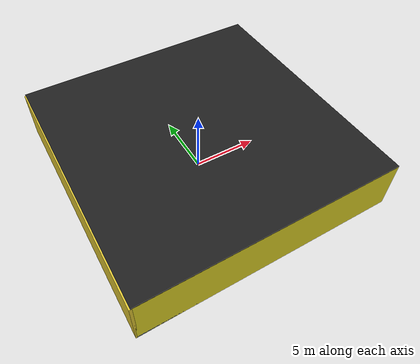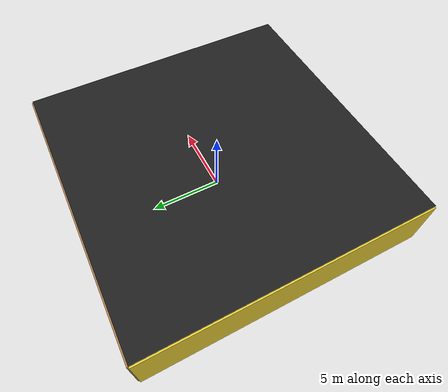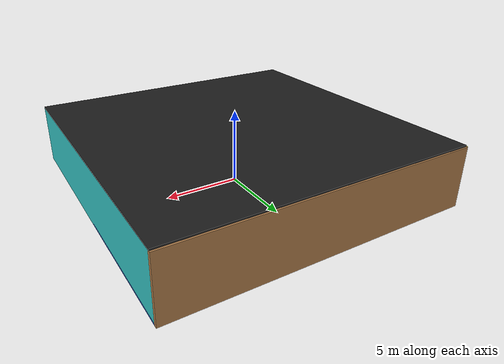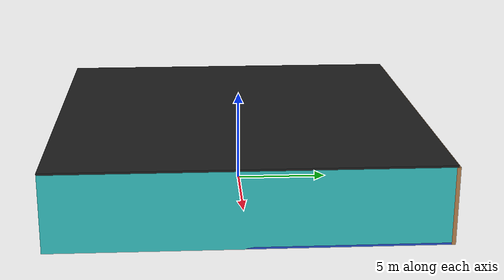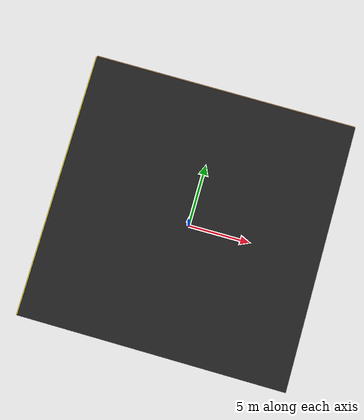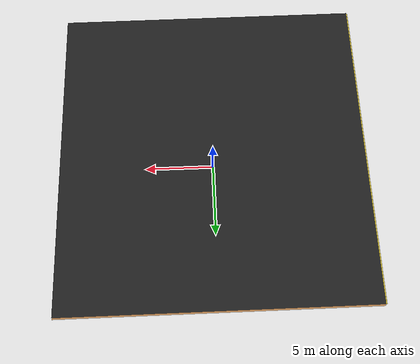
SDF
<sdf version="1.4">
 <world name="default">
  <physics type="ode">
   <max_step_size>0.001</max_step_size>
   <real_time_factor>1</real_time_factor>
   <real_time_update_rate>1000</real_time_update_rate>
   <gravity>0 0 -9.8</gravity>
  </physics>
  <scene><ambient>0.4 0.4 0.4 1</ambient><background>0.7 0.7 0.7 1</background><shadows>1</shadows></scene>
  <model name="Surrounding">
   <static>1</static>
   <link name="Ceiling">
    <collision name="Ceiling_Collision"><geometry><box><size>20 20 0.1</size></box></geometry></collision>
    <visual name="Ceiling_Visual">
     <geometry><box><size>20 20 0.1</size></box></geometry>
     <material>
      <script><uri>file://media/materials/scripts/gazebo.material</uri><name>Gazebo/FlatBlack</name></script>
     </material>
    </visual>
    <pose>0 0 4.05 0 0 0</pose>
   </link>
   <link name="Wall_South">
    <collision name="Wall_South_Collision">
     <geometry><box><size>20 0 4</size></box></geometry>
     <pose>0 0 2 0 -0 0</pose>
    </collision>
    <visual name="Wall_South_Visual">
     <pose>0 0 2 0 -0 0</pose>
     <geometry><box><size>20 0 4</size></box></geometry>
     <material>
      <script><uri>file://media/materials/scripts/gazebo.material</uri><name>Gazebo/Yellow</name></script>
     </material>
    </visual>
    <velocity_decay><linear>0</linear><angular>0</angular></velocity_decay>
    <pose>0 -10 0 0 -0 0</pose>
   </link>
   <link name="Wall_East">
    <collision name="Wall_21_Collision">
     <geometry><box><size>20 0 4</size></box></geometry>
     <pose>0 0 2 0 -0 0</pose>
    </collision>
    <visual name="Wall_21_Visual">
     <pose>0 0 2 0 -0 0</pose>
     <geometry><box><size>20 0 4</size></box></geometry>
     <material>
      <script>
       <uri>file://media/materials/scripts/gazebo.material</uri>
       <name>Gazebo/TurquoiseGlowOutline</name>
      </script>
     </material>
    </visual>
    <velocity_decay><linear>0</linear><angular>0</angular></velocity_decay>
    <pose>10 0 0 0 -0 1.5708</pose>
   </link>
   <link name="Wall_North">
    <collision name="Wall_22_Collision">
     <geometry><box><size>20 0.2 4</size></box></geometry>
     <pose>0 0 2 0 -0 0</pose>
    </collision>
    <visual name="Wall_22_Visual">
     <pose>0 0 2 0 -0 0</pose>
     <geometry><box><size>20 0.2 4</size></box></geometry>
     <material>
      <script><uri>file://media/materials/scripts/gazebo.material</uri><name>Gazebo/WoodFloor</name></script>
     </material>
    </visual>
    <velocity_decay><linear>0</linear><angular>0</angular></velocity_decay>
    <pose>0 10 0 0 -0 0</pose>
   </link>
   <link name="Wall_West">
    <collision name="Wall_23_Collision">
     <geometry><box><size>20 0.2 4</size></box></geometry>
     <pose>0 0 2 0 -0 0</pose>
    </collision>
    <visual name="Wall_23_Visual">
     <pose>0 0 2 0 -0 0</pose>
     <geometry><box><size>20 0.2 4</size></box></geometry>
     <material>
      <script><uri>file://media/materials/scripts/gazebo.material</uri><name>Gazebo/ZincYellow</name></script>
     </material>
    </visual>
    <velocity_decay><linear>0</linear><angular>0</angular></velocity_decay>
    <pose>-10 0 0 0 0 -1.5708</pose>
   </link>
   <link name="Ground_link">
    <collision name="collision">
     <pose>0 0 .05 0 -0 0</pose>
     <geometry><box><size>20 20 0.1</size></box></geometry>
    </collision>
    <visual name="visual">
     <pose>0 0 .05 0 -0 0</pose>
     <geometry><box><size>20 20 0.1</size></box></geometry>
     <material>
      <script><uri>file://media/materials/scripts/gazebo.material</uri><name>Gazebo/Blue</name></script>
     </material>
    </visual>
   </link>
   <static>1</static>
  </model>
  <spherical_coordinates>
   <surface_model>EARTH_WGS84</surface_model>
   <latitude_deg>0</latitude_deg>
   <longitude_deg>0</longitude_deg>
   <elevation>0</elevation>
   <heading_deg>0</heading_deg>
  </spherical_coordinates>
  <light name="lightball_0" type="diffuse">
   <diffuse>0.8 0.8 0.8 1</diffuse>
   <specular>0.2 0.2 0.2 1</specular>
   <attenuation>
    <range>100</range>
    <constant>0.7</constant>
    <linear>0.01</linear>
    <quadratic>0.001</quadratic>
   </attenuation>
   <direction>-0.5 0.1 -0.9</direction>
   <pose>1.19619854334 -7.68556368945 1.0490017057 0 0 0</pose>
  </light>
  <light name="lightball_1" type="diffuse">
   <diffuse>0.8 0.8 0.8 1</diffuse>
   <specular>0.2 0.2 0.2 1</specular>
   <attenuation>
    <range>100</range>
    <constant>0.7</constant>
    <linear>0.01</linear>
    <quadratic>0.001</quadratic>
   </attenuation>
   <direction>-0.5 0.1 -0.9</direction>
   <pose>-4.20555650334 0.628176027052 3.6456542004 0 0 0</pose>
  </light>
  <light name="lightball_2" type="diffuse">
   <diffuse>0.8 0.8 0.8 1</diffuse>
   <specular>0.2 0.2 0.2 1</specular>
   <attenuation>
    <range>100</range>
    <constant>0.7</constant>
    <linear>0.01</linear>
    <quadratic>0.001</quadratic>
   </attenuation>
   <direction>-0.5 0.1 -0.9</direction>
   <pose>-1.04581265464 9.6707907372 3.09864442075 0 0 0</pose>
  </light>
  <light name="lightball_3" type="diffuse">
   <diffuse>0.8 0.8 0.8 1</diffuse>
   <specular>0.2 0.2 0.2 1</specular>
   <attenuation>
    <range>100</range>
    <constant>0.7</constant>
    <linear>0.01</linear>
    <quadratic>0.001</quadratic>
   </attenuation>
   <direction>-0.5 0.1 -0.9</direction>
   <pose>1.9579864965 -6.89914713165 1.70367241435 0 0 0</pose>
  </light>
  <light name="lightball_4" type="diffuse">
   <diffuse>0.8 0.8 0.8 1</diffuse>
   <specular>0.2 0.2 0.2 1</specular>
   <attenuation>
    <range>100</range>
    <constant>0.7</constant>
    <linear>0.01</linear>
    <quadratic>0.001</quadratic>
   </attenuation>
   <direction>-0.5 0.1 -0.9</direction>
   <pose>9.87462967049 3.81513222386 2.32640871155 0 0 0</pose>
  </light>
  <light name="lightball_5" type="diffuse">
   <diffuse>0.8 0.8 0.8 1</diffuse>
   <specular>0.2 0.2 0.2 1</specular>
   <attenuation>
    <range>100</range>
    <constant>0.7</constant>
    <linear>0.01</linear>
    <quadratic>0.001</quadratic>
   </attenuation>
   <direction>-0.5 0.1 -0.9</direction>
   <pose>2.18532198891 3.46663568389 1.6743416166 0 0 0</pose>
  </light>
  <light name="lightball_6" type="diffuse">
   <diffuse>0.8 0.8 0.8 1</diffuse>
   <specular>0.2 0.2 0.2 1</specular>
   <attenuation>
    <range>100</range>
    <constant>0.7</constant>
    <linear>0.01</linear>
    <quadratic>0.001</quadratic>
   </attenuation>
   <direction>-0.5 0.1 -0.9</direction>
   <pose>-6.43772910252 -6.26684560751 3.23067179777 0 0 0</pose>
  </light>
  <light name="lightball_7" type="diffuse">
   <diffuse>0.8 0.8 0.8 1</diffuse>
   <specular>0.2 0.2 0.2 1</specular>
   <attenuation>
    <range>100</range>
    <constant>0.7</constant>
    <linear>0.01</linear>
    <quadratic>0.001</quadratic>
   </attenuation>
   <direction>-0.5 0.1 -0.9</direction>
   <pose>-9.87012126147 0.236599934147 3.18490079748 0 0 0</pose>
  </light>
  <light name="lightball_8" type="diffuse">
   <diffuse>0.8 0.8 0.8 1</diffuse>
   <specular>0.2 0.2 0.2 1</specular>
   <attenuation>
    <range>100</range>
    <constant>0.7</constant>
    <linear>0.01</linear>
    <quadratic>0.001</quadratic>
   </attenuation>
   <direction>-0.5 0.1 -0.9</direction>
   <pose>6.1951815427 0.636312537409 1.13995641625 0 0 0</pose>
  </light>
  <light name="lightball_9" type="diffuse">
   <diffuse>0.8 0.8 0.8 1</diffuse>
   <specular>0.2 0.2 0.2 1</specular>
   <attenuation>
    <range>100</range>
    <constant>0.7</constant>
    <linear>0.01</linear>
    <quadratic>0.001</quadratic>
   </attenuation>
   <direction>-0.5 0.1 -0.9</direction>
   <pose>-3.17985698988 -2.87228417793 2.68985303226 0 0 0</pose>
  </light>
  <light name="lightball_10" type="diffuse">
   <diffuse>0.8 0.8 0.8 1</diffuse>
   <specular>0.2 0.2 0.2 1</specular>
   <attenuation>
    <range>100</range>
    <constant>0.7</constant>
    <linear>0.01</linear>
    <quadratic>0.001</quadratic>
   </attenuation>
   <direction>-0.5 0.1 -0.9</direction>
   <pose>9.20319301071 -8.84673924103 0.621625419924 0 0 0</pose>
  </light>
  <light name="lightball_11" type="diffuse">
   <diffuse>0.8 0.8 0.8 1</diffuse>
   <specular>0.2 0.2 0.2 1</specular>
   <attenuation>
    <range>100</range>
    <constant>0.7</constant>
    <linear>0.01</linear>
    <quadratic>0.001</quadratic>
   </attenuation>
   <direction>-0.5 0.1 -0.9</direction>
   <pose>9.64213970218 -2.43664998737 1.40988086597 0 0 0</pose>
  </light>
  <include>
   <uri>model://construction_cone</uri>
   <pose>-7.82266009668 7.43155292795 0 0 0 0.344344892157</pose>
  </include>
  <include><uri>model://table</uri><pose>-4.7928730047 -1.46724161471 0 0 0 0.204622347295</pose></include>
  <include><uri>model://cabinet</uri><pose>-3.97623508996 4.24375226689 0 0 0 2.60800857217</pose></include>
  <include><uri>model://cabinet</uri><pose>-1.33767855329 -7.74134579936 0 0 0 0.981604870955</pose></include>
  <include>
   <uri>model://textured_shapes</uri>
   <pose>1.82800193747 -4.70967084243 0 0 0 1.1061515745</pose>
  </include>
 </world>
</sdf>

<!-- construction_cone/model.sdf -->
<sdf version="1.5">
  <model name="Construction Cone">
    <link name="link">
      <collision name="collision">
        <geometry>
          <mesh>
            <scale>10 10 10</scale>
            <uri>file://isr-testbed/construction_cone/meshes/construction_cone.dae</uri>
          </mesh>
        </geometry>
      </collision>
      <visual name="visual">
        <geometry>
          <mesh>
            <scale>10 10 10</scale>
            <uri>file://isr-testbed/construction_cone/meshes/construction_cone.dae</uri>
          </mesh>
        </geometry>
      </visual>
    </link>
  </model>
</sdf>

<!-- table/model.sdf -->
<sdf version="1.5">
  <model name="table">
    <static>true</static>
    <link name="link">
      <collision name="surface">
        <pose>0 0 1.0 0 0 0</pose>
        <geometry>
          <box>
            <size>1.5 0.8 0.03</size>
          </box>
        </geometry>
        <surface>
          <friction>
            <ode>
              <mu>0.6</mu>
              <mu2>0.6</mu2>
            </ode>
          </friction>
        </surface>
      </collision>
      <visual name="visual1">
        <pose>0 0 1.0 0 0 0</pose>
        <geometry>
          <box>
            <size>1.5 0.8 0.03</size>
          </box>
        </geometry>
        <material>
          <script>
            <uri>model://media/materials/scripts/gazebo.material</uri>
            <name>Gazebo/Wood</name>
          </script>
        </material>
      </visual>
      <collision name="front_left_leg">
        <pose>0.68 0.38 0.5 0 0 0</pose>
        <geometry>
          <cylinder>
            <radius>0.02</radius>
            <length>1.0</length>
          </cylinder>
        </geometry>
      </collision>
      <visual name="front_left_leg">
        <pose>0.68 0.38 0.5 0 0 0</pose>
        <geometry>
          <cylinder>
            <radius>0.02</radius>
            <length>1.0</length>
          </cylinder>
        </geometry>
        <material>
          <script>
            <uri>model://media/materials/scripts/gazebo.material</uri>
            <name>Gazebo/Grey</name>
          </script>
        </material>
      </visual>
      <collision name="front_right_leg">
        <pose>0.68 -0.38 0.5 0 0 0</pose>
        <geometry>
          <cylinder>
            <radius>0.02</radius>
            <length>1.0</length>
          </cylinder>
        </geometry>
      </collision>
      <visual name="front_right_leg">
        <pose>0.68 -0.38 0.5 0 0 0</pose>
        <geometry>
          <cylinder>
            <radius>0.02</radius>
            <length>1.0</length>
          </cylinder>
        </geometry>
        <material>
          <script>
            <uri>model://media/materials/scripts/gazebo.material</uri>
            <name>Gazebo/Grey</name>
          </script>
        </material>
      </visual>
      <collision name="back_right_leg">
        <pose>-0.68 -0.38 0.5 0 0 0</pose>
        <geometry>
          <cylinder>
            <radius>0.02</radius>
            <length>1.0</length>
          </cylinder>
        </geometry>
      </collision>
      <visual name="back_right_leg">
        <pose>-0.68 -0.38 0.5 0 0 0</pose>
        <geometry>
          <cylinder>
            <radius>0.02</radius>
            <length>1.0</length>
          </cylinder>
        </geometry>
        <material>
          <script>
            <uri>model://media/materials/scripts/gazebo.material</uri>
            <name>Gazebo/Grey</name>
          </script>
        </material>
      </visual>
      <collision name="back_left_leg">
        <pose>-0.68 0.38 0.5 0 0 0</pose>
        <geometry>
          <cylinder>
            <radius>0.02</radius>
            <length>1.0</length>
          </cylinder>
        </geometry>
      </collision>
      <visual name="back_left_leg">
        <pose>-0.68 0.38 0.5 0 0 0</pose>
        <geometry>
          <cylinder>
            <radius>0.02</radius>
            <length>1.0</length>
          </cylinder>
        </geometry>
        <material>
          <script>
            <uri>model://media/materials/scripts/gazebo.material</uri>
            <name>Gazebo/Grey</name>
          </script>
        </material>
      </visual>
    </link>
  </model>
</sdf>

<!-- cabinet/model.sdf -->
<sdf version="1.5">
  <model name="cabinet">
    <static>true</static>
    <link name="cabinet_bottom_plate">
      <inertial>
        <pose>0 0 -1 0 0 0</pose>
        <inertia>
          <ixx>2.050000</ixx>
          <ixy>0</ixy>
          <ixz>0</ixz>
          <iyy>2.050000</iyy>
          <iyz>0</iyz>
          <izz>2.050000</izz>
        </inertia>
        <mass>25.000000</mass>
      </inertial>
      <collision name="cabinet_bottom_plate_geom">
        <pose>0 0 0.010000 0 0 0</pose>
        <geometry>
          <box>
            <size>0.450000 0.450000 0.020000</size>
          </box>
        </geometry>
      </collision>
      <visual name="cabinet_bottom_plate_geom_visual">
        <pose>0 0 0.010000 0 0 0</pose>
        <geometry>
          <box>
            <size>0.450000 0.450000 0.020000</size>
          </box>
        </geometry>
        <material>
          <script>
            <uri>model://media/materials/scripts/gazebo.material</uri>
            <name>Gazebo/Wood</name>
          </script>
        </material>
      </visual>
      <collision name="cabinet_bottom_plate_geom_cabinet_back_plate">
        <pose>0.235000 0 0.510000 0 0 0</pose>
        <geometry>
          <box>
            <size>0.020000 0.450000 1.020000</size>
          </box>
        </geometry>
      </collision>
      <visual name="cabinet_bottom_plate_geom_cabinet_back_plate_visual">
        <pose>0.235000 0 0.510000 0 0 0</pose>
        <geometry>
          <box>
            <size>0.020000 0.450000 1.020000</size>
          </box>
        </geometry>
        <material>
          <script>
            <uri>model://media/materials/scripts/gazebo.material</uri>
            <name>Gazebo/Wood</name>
          </script>
        </material>
      </visual>
      <collision name="cabinet_bottom_plate_geom_cabinet_left_plate">
        <pose>0 0.235000 0.510000 0 0 0</pose>
        <geometry>
          <box>
            <size>0.450000 0.020000 1.020000</size>
          </box>
        </geometry>
      </collision>
      <visual name="cabinet_bottom_plate_geom_cabinet_left_plate_visual">
        <pose>0 0.235000 0.510000 0 0 0</pose>
        <geometry>
          <box>
            <size>0.450000 0.020000 1.020000</size>
          </box>
        </geometry>
        <material>
          <script>
            <uri>model://media/materials/scripts/gazebo.material</uri>
            <name>Gazebo/Wood</name>
          </script>
        </material>
      </visual>
      <collision name="cabinet_bottom_plate_geom_cabinet_middle_plate">
        <pose>0 0 0.510000 0 0 0</pose>
        <geometry>
          <box>
            <size>0.450000 0.450000 0.020000</size>
          </box>
        </geometry>
      </collision>
      <visual name="cabinet_bottom_plate_geom_cabinet_middle_plate_visual">
        <pose>0 0 0.510000 0 0 0</pose>
        <geometry>
          <box>
            <size>0.450000 0.450000 0.020000</size>
          </box>
        </geometry>
        <material>
          <script>
            <uri>model://media/materials/scripts/gazebo.material</uri>
            <name>Gazebo/Wood</name>
          </script>
        </material>
      </visual>
      <collision name="cabinet_bottom_plate_geom_cabinet_right_plate">
        <pose>0 -0.235000 0.510000 0 0 0</pose>
        <geometry>
          <box>
            <size>0.450000 0.020000 1.020000</size>
          </box>
        </geometry>
      </collision>
      <visual name="cabinet_bottom_plate_geom_cabinet_right_plate_visual">
        <pose>0 -0.235000 0.510000 0 0 0</pose>
        <geometry>
          <box>
            <size>0.450000 0.020000 1.020000</size>
          </box>
        </geometry>
        <material>
          <script>
            <uri>model://media/materials/scripts/gazebo.material</uri>
            <name>Gazebo/Wood</name>
          </script>
        </material>
      </visual>
      <collision name="cabinet_bottom_plate_geom_cabinet_top_plate">
        <pose>0 0 1.010000 0 0 0</pose>
        <geometry>
          <box>
            <size>0.450000 0.450000 0.020000</size>
          </box>
        </geometry>
      </collision>
      <visual name="cabinet_bottom_plate_geom_cabinet_top_plate_visual">
        <pose>0 0 1.010000 0 0 0</pose>
        <geometry>
          <box>
            <size>0.450000 0.450000 0.020000</size>
          </box>
        </geometry>
        <material>
          <script>
            <uri>model://media/materials/scripts/gazebo.material</uri>
            <name>Gazebo/Wood</name>
          </script>
        </material>
      </visual>
    </link>
  </model>
</sdf>

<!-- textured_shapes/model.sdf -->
<sdf version="1.6">
  <model name="textured_shapes">
    <pose>0 0 0.5 0 0 0</pose>
    <link name="box">
      <pose>0 -1.5 0 0 0 0</pose>
      <collision name="collision">
        <geometry>
          <box>
            <size>1 1 1</size>
          </box>
        </geometry>
      </collision>
      <visual name="visual">
        <geometry>
          <box>
            <size>1 1 1</size>
          </box>
        </geometry>
        <material>
          <script>
            <uri>model://../model_source/models/textured_shapes/materials/scripts</uri>
            <uri>model://../model_source/models/textured_shapes/materials/textures</uri>
            <name>TexturedShape/Squares</name>
          </script>
        </material>
      </visual>
    </link>
    <link name="sphere">
      <collision name="collision">
        <geometry>
          <sphere>
            <radius>0.5</radius>
          </sphere>
        </geometry>
      </collision>
      <visual name="visual">
        <geometry>
          <sphere>
            <radius>0.5</radius>
          </sphere>
        </geometry>
        <material>
          <script>
            <uri>model://../model_source/models/textured_shapes/materials/scripts</uri>
            <uri>model://../model_source/models/textured_shapes/materials/textures</uri>
            <name>TexturedShape/Squares</name>
          </script>
        </material>
      </visual>
    </link>
    <link name="cylinder">
      <pose>0 1.5 0 0 0 0</pose>
      <collision name="collision">
        <geometry>
          <cylinder>
            <radius>0.5</radius>
            <length>1</length>
          </cylinder>
        </geometry>
      </collision>
      <visual name="visual">
        <geometry>
          <cylinder>
            <radius>0.5</radius>
            <length>1</length>
          </cylinder>
        </geometry>
        <material>
          <script>
            <uri>model://../model_source/models/textured_shapes/materials/scripts</uri>
            <uri>model://../model_source/models/textured_shapes/materials/textures</uri>
            <name>TexturedShape/Squares</name>
          </script>
        </material>
      </visual>
    </link>
  </model>
</sdf>
